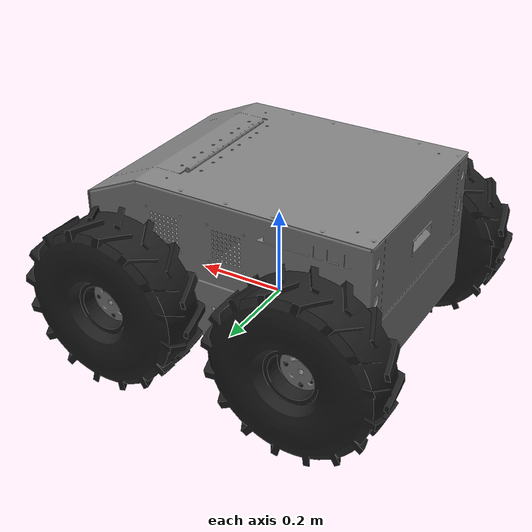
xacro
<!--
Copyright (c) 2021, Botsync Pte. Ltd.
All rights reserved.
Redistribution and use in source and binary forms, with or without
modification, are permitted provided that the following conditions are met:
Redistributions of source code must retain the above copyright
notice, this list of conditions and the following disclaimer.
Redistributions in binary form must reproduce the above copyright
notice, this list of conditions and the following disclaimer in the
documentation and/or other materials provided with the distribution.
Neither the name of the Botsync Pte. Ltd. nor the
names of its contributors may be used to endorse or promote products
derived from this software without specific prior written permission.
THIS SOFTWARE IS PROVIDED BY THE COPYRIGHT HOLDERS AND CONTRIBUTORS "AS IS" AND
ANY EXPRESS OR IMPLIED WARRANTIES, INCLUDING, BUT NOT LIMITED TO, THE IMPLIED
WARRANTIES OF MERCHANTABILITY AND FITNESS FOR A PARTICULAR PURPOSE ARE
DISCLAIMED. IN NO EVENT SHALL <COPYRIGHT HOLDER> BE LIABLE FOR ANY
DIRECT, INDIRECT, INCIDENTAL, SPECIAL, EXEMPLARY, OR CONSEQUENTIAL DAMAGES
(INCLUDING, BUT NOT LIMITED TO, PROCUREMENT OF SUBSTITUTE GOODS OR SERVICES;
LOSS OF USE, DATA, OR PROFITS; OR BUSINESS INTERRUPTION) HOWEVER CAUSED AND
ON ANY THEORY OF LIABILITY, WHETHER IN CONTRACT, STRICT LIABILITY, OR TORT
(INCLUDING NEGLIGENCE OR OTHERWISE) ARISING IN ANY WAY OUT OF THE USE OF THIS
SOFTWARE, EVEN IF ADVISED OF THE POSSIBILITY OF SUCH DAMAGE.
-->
<robot name="copernicus" xmlns:xacro="http://ros.org/wiki/xacro">

  <xacro:include filename="$(find copernicus_description)/urdf/copernicus.urdf.xacro" />
  <xacro:copernicus_robot />

</robot>

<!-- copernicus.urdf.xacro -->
<robot name="copernicus_robot" xmlns:xacro="https://ros.org/wiki/xacro">
    <!-- xacro includes -->
    <xacro:include filename="$(find copernicus_description)/urdf/vehicle_properties.xacro"/>
    <xacro:include filename="$(find copernicus_description)/urdf/components/wheel.urdf.xacro"/>

    <!-- xacro properties -->
    <xacro:property name="PI" value="3.14159"/>

    <!-- xacro args -->
    <xacro:arg name="robot_namespace" default="/" />
    <xacro:arg name="lidar_enabled" default="true"/>
    <xacro:arg name="sick_lms151_enabled" default="false"/>
    <xacro:arg name="velodyne_enabled" default="false"/>
    <xacro:arg name="imu_enabled" default="false"/>

    <xacro:macro name="copernicus_robot">
        <!-- Footprint -->
        <link name="footprint"/>

        <!-- Joint from footprint to base link(chassis) -->
        <joint name="base_footprint_joint" type="fixed">
            <origin xyz="0 0 0" rpy="0 0 0" />
            <parent link="base_link" />
            <child link="footprint" />
        </joint>

        <!-- Chassis a.k.a base_link -->
        <link name="base_link">
            <visual>
                <origin xyz="0 0 0" rpy="0 0 0" />
                <geometry>
                    <mesh filename="package://copernicus_description/meshes/copernicus.dae" scale="0.1 0.1 0.1"/>
                </geometry>
                <material name="gray"/>
            </visual>
            <collision>
                <origin xyz="0 0 0" rpy="0 0 0" />
                <geometry>
                    <mesh filename="package://copernicus_description/meshes/copernicus.dae" scale="0.1 0.1 0.1"/>
                </geometry>
            </collision>
            <inertial>
                <mass value="${base_mass}"/>
                <inertia ixx="${base_ixx}" ixy="${base_ixy}" ixz="${base_ixz}" iyy="${base_iyy}" iyz="${base_iyz}" izz="${base_izz}"/>
            </inertial>
        </link>

        <!-- Wheel -->
        <xacro:copernicus_wheel wheel_prefix="front_right">
            <origin xyz="${wheel_joint_x_abs} ${-wheel_joint_y_abs} ${wheel_joint_z_abs}" rpy="0 0 0"/>
        </xacro:copernicus_wheel>

        <xacro:copernicus_wheel wheel_prefix="back_right">
            <origin xyz="${-wheel_joint_x_abs} ${-wheel_joint_y_abs} ${wheel_joint_z_abs}" rpy="0 0 0"/>
        </xacro:copernicus_wheel>

        <xacro:copernicus_wheel wheel_prefix="front_left">
            <origin xyz="${wheel_joint_x_abs} ${wheel_joint_y_abs} ${wheel_joint_z_abs}" rpy="0 0 0"/>
        </xacro:copernicus_wheel>

        <xacro:copernicus_wheel wheel_prefix="back_left">
            <origin xyz="${-wheel_joint_x_abs} ${wheel_joint_y_abs} ${wheel_joint_z_abs}" rpy="0 0 0"/>
        </xacro:copernicus_wheel>

        <!-- IMU -->
        <xacro:if value="$(arg imu_enabled)">
            <xacro:include filename="$(find copernicus_description)/urdf/accessories/imu_copernicus.urdf.xacro"/>
            <xacro:imu robot_namespace="$(arg robot_namespace)"></xacro:imu>
        </xacro:if>

        <!-- LIDAR -->
        <xacro:if value="$(arg lidar_enabled)">
            <xacro:include filename="$(find copernicus_description)/urdf/accessories/lms_151_copernicus.urdf.xacro"/>
            <xacro:lidar sick_lms151_enabled="$(arg sick_lms151_enabled)" robot_namespace="$(arg robot_namespace)"></xacro:lidar>

        </xacro:if>

        <!-- Velodyne -->
        <xacro:if value="$(arg velodyne_enabled)">
            <xacro:include filename="$(find copernicus_description)/urdf/accessories/velodyne_mount.urdf.xacro"/>
            <xacro:velodyne_mount></xacro:velodyne_mount>
            <xacro:include filename="$(find velodyne_description)/urdf/VLP-16.urdf.xacro"/>
            <VLP-16 parent="velodyne_mount" name="velodyne" topic="velodyne_points" hz="10" samples="440" gpu="false" min_range="0.2">
                <origin xyz="${velodyne_joint_x} ${velodyne_joint_y} ${velodyne_joint_z}" rpy="0 ${-velodyne_joint_pitch} 0" />
            </VLP-16>
        </xacro:if>

        <!-- CAMERA -->

        <!--ROBOT GAZEBO TAG-->
        <gazebo>
            <plugin name="gazebo_ros_control" filename="libgazebo_ros_control.so">
                <robotNamespace>$(arg robot_namespace)</robotNamespace>
                <robotSimType>gazebo_ros_control/DefaultRobotHWSim</robotSimType>
            </plugin>
        </gazebo>

    </xacro:macro>

</robot>

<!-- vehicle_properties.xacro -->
<robot name="copernicus_robot" xmlns:xacro="https://ros.org/wiki/xacro">
    <material name="blue">
        <color rgba="0 0 0.8 1"/>
    </material>

    <material name="white">
       <color rgba="1 1 1 1"/>
    </material>

    <material name="gray">
        <color rgba="0.5 0.5 0.5 1"/>
    </material>

    <xacro:property name="base_mass" value="5.674"/>

    <xacro:property name="base_l" value="0.646"/>
    <xacro:property name="base_w" value="0.456"/>
    <xacro:property name="base_h" value="0.323"/>
    <xacro:property name="base_ixx" value="3.28"/>
    <xacro:property name="base_ixy" value="0.00"/>
    <xacro:property name="base_ixz" value="0.00"/>
    <xacro:property name="base_iyy" value="3.69"/>
    <xacro:property name="base_iyz" value="0.00"/>
    <xacro:property name="base_izz" value="2.26"/>

    <xacro:property name="ground_clearance" value="0.11457"/>

    <xacro:property name="wheel_width" value="0.120" />
    <xacro:property name="wheel_radius" value="0.18" />
    <xacro:property name="wheel_joint_x_abs" value="0.22030" />
    <xacro:property name="wheel_joint_y_abs" value="0.29490" />
    <xacro:property name="wheel_joint_z_abs" value="0.07300" />
    <xacro:property name="wheel_ixx" value="0.739"/>
    <xacro:property name="wheel_ixy" value="0.170"/>
    <xacro:property name="wheel_ixz" value="0.236"/>
    <xacro:property name="wheel_iyy" value="0.741"/>
    <xacro:property name="wheel_iyz" value="0.299"/>
    <xacro:property name="wheel_izz" value="0.460"/>

    <xacro:property name="lms151_mount_l" value="0.156"/>
    <xacro:property name="lms151_mount_h" value="0.094"/>
    <xacro:property name="lms151_mount_w" value="0.1102"/>
    <xacro:property name="lms151_mount_mass" value="0.229"/>
    <xacro:property name="lms151_mount_ixx" value="0.002"/>
    <xacro:property name="lms151_mount_ixy" value="0.000"/>
    <xacro:property name="lms151_mount_ixz" value="0.000"/>
    <xacro:property name="lms151_mount_iyy" value="0.005"/>
    <xacro:property name="lms151_mount_iyz" value="0.000"/>
    <xacro:property name="lms151_mount_izz" value="0.002"/>

    <xacro:property name="lms151_mount_joint_x" value="0.0177"/>
    <xacro:property name="lms151_mount_joint_y" value="0.0"/>
    <xacro:property name="lms151_mount_joint_z" value="0.356"/>

    <xacro:property name="lms151_joint_x" value="0.0453"/>
    <xacro:property name="lms151_joint_y" value="0.0"/>
    <xacro:property name="lms151_joint_z" value="0.158"/>

    <xacro:property name="velodyne_mount_l" value="0.112"/>
    <xacro:property name="velodyne_mount_h" value="0.039"/>
    <xacro:property name="velodyne_mount_w" value="0.125"/>
    <xacro:property name="velodyne_mount_mass" value="0.300"/>
    <xacro:property name="velodyne_mount_ixx" value="0.002"/>
    <xacro:property name="velodyne_mount_ixy" value="0.000"/>
    <xacro:property name="velodyne_mount_ixz" value="0.000"/>
    <xacro:property name="velodyne_mount_iyy" value="0.005"/>
    <xacro:property name="velodyne_mount_iyz" value="0.000"/>
    <xacro:property name="velodyne_mount_izz" value="0.002"/>

    <xacro:property name="velodyne_mount_joint_x" value="0.259"/>
    <xacro:property name="velodyne_mount_joint_y" value="-0.0625"/>
    <xacro:property name="velodyne_mount_joint_z" value="0.296"/>
    <xacro:property name="velodyne_mount_joint_pitch" value="0.415"/>

    <xacro:property name="velodyne_joint_x" value="0.027"/>
    <xacro:property name="velodyne_joint_y" value="0.0625"/>
    <xacro:property name="velodyne_joint_z" value="0.0295"/>
    <xacro:property name="velodyne_joint_pitch" value="0.262"/>
    <xacro:property name="dummy_inertia" value="1e-09"/>

    <xacro:property name="dummy_inertia" value="1e-09"/>

</robot>

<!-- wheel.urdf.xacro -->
<robot name="copernicus_wheel" xmlns:xacro="https://ros.org/wiki/xacro">
    <!-- Wheel Macro -->
    <xacro:macro name="copernicus_wheel" params="wheel_prefix *joint_origin">

        <!-- Wheel Link -->
        <link name="${wheel_prefix}_wheel">
            <visual>
                <origin xyz="0 0 0" rpy="0 0 0"/>
                <geometry>
                    <mesh filename="package://copernicus_description/meshes/wheel.dae" scale="0.1 0.1 0.1"/>
                </geometry>
                <material name="black"/>
            </visual>
            <collision>
                <origin xyz="0 0 0" rpy="${PI/2} 0 0"/>
                <geometry>
                    <cylinder length="${wheel_width}" radius="${wheel_radius}" />
                </geometry>
            </collision>
            <inertial>
                <mass value="2.637" />
                <origin xyz="0 0 0" />
                <inertia  ixx="${wheel_ixx}" ixy="${wheel_ixy}" ixz="${wheel_ixz}" iyy="${wheel_iyy}" iyz="${wheel_iyz}" izz="${wheel_izz}" />
            </inertial>
        </link>

        <gazebo reference="${wheel_prefix}_wheel">
            <material>Gazebo/Black</material>
            <mu1 value="1.0"/>
            <mu2 value="1.0"/>
            <kp value="10000000.0" />
            <kd value="1.0" />
            <fdir1 value="0 0 0"/>
        </gazebo>

        <!-- Wheel Joint -->
        <joint name="${wheel_prefix}_wheel_joint" type="continuous">
            <parent link="base_link"/>
            <child link="${wheel_prefix}_wheel" />
            <xacro:insert_block name="joint_origin" />
            <axis xyz="0 1 0" />
        </joint>

        <!-- Wheel Transmission -->
        <transmission name="${wheel_prefix}_wheel_transmission" type="SimpleTransmission">
            <type>transmission_interface/SimpleTransmission</type>
            <joint name="${wheel_prefix}_wheel_joint">
                <hardwareInterface>hardware_interface/VelocityJointInterface</hardwareInterface>
            </joint>
            <actuator name="${wheel_prefix}_motor">
                <mechanicalReduction>1</mechanicalReduction>
            </actuator>
        </transmission>
    </xacro:macro>
</robot>
